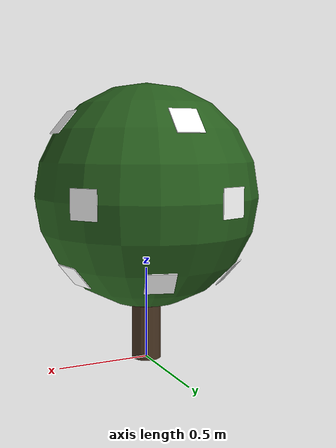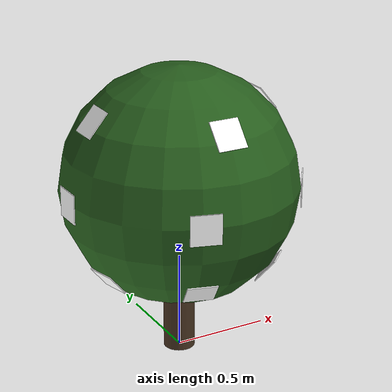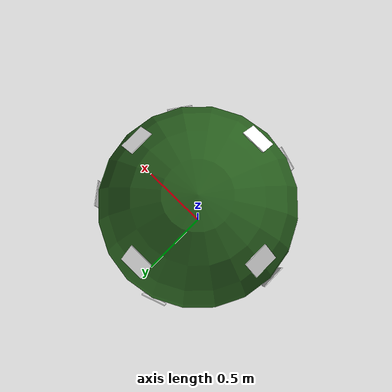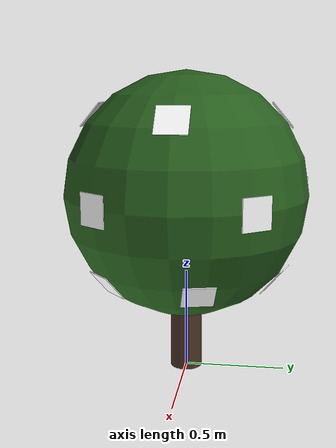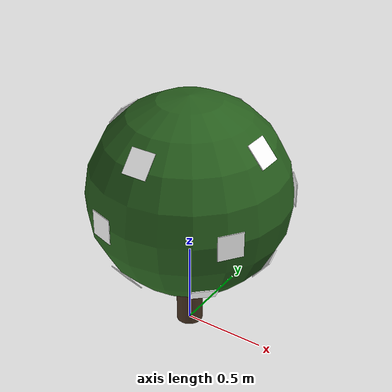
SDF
<?xml version="1.0"?>
<sdf version="1.8">
  <model name="citrus_tree">
    <static>true</static>
    <link name="link">

      <!-- Trunk -->
      <visual name="trunk_visual">
        <pose>0 0 0.15 0 0 0</pose>
        <geometry>
          <cylinder>
            <radius>0.08</radius>
            <length>0.3</length>
          </cylinder>
        </geometry>
        <material>
          <ambient>0.18 0.13 0.08 1</ambient>
          <diffuse>0.28 0.20 0.13 1</diffuse>
          <specular>0.02 0.02 0.02 1</specular>
        </material>
      </visual>

      <collision name="trunk_col">
        <pose>0 0 0.15 0 0 0</pose>
        <geometry>
          <cylinder>
            <radius>0.08</radius>
            <length>0.3</length>
          </cylinder>
        </geometry>
      </collision>

      <!-- Canopy -->
      <visual name="canopy_visual">
        <pose>0 0 0.9 0 0 0</pose>
        <geometry>
          <sphere>
            <radius>0.6</radius>
          </sphere>
        </geometry>
        <material>
          <ambient>0.09 0.28 0.09 1</ambient>
          <diffuse>0.16 0.38 0.12 1</diffuse>
          <specular>0.05 0.05 0.05 1</specular>
        </material>
      </visual>

      <collision name="canopy_col">
        <pose>0 0 0.9 0 0 0</pose>
        <geometry>
          <sphere>
            <radius>0.6</radius>
          </sphere>
        </geometry>
      </collision>

      <!-- Upper ring: 4 markers at 40 deg elevation, azimuth offset 0 deg -->
      <visual name="aruco_marker_01">
        <pose>0.4615 0.0 1.2873 0 0.8727 0.0</pose>
        <geometry>
          <box>
            <size>0.15 0.15 0.005</size>
          </box>
        </geometry>
        <material>
          <ambient>1 1 1 1</ambient>
          <diffuse>1 1 1 1</diffuse>
          <pbr>
            <metal>
              <albedo_map>model://citrus_tree/materials/textures/aruco_marker_0.png</albedo_map>
            </metal>
          </pbr>
        </material>
      </visual>

      <visual name="aruco_marker_02">
        <pose>0.0 0.4615 1.2873 0 0.8727 1.5708</pose>
        <geometry>
          <box>
            <size>0.15 0.15 0.005</size>
          </box>
        </geometry>
        <material>
          <ambient>1 1 1 1</ambient>
          <diffuse>1 1 1 1</diffuse>
          <pbr>
            <metal>
              <albedo_map>model://citrus_tree/materials/textures/aruco_marker_0.png</albedo_map>
            </metal>
          </pbr>
        </material>
      </visual>

      <visual name="aruco_marker_03">
        <pose>-0.4615 0.0 1.2873 0 0.8727 3.1416</pose>
        <geometry>
          <box>
            <size>0.15 0.15 0.005</size>
          </box>
        </geometry>
        <material>
          <ambient>1 1 1 1</ambient>
          <diffuse>1 1 1 1</diffuse>
          <pbr>
            <metal>
              <albedo_map>model://citrus_tree/materials/textures/aruco_marker_0.png</albedo_map>
            </metal>
          </pbr>
        </material>
      </visual>

      <visual name="aruco_marker_04">
        <pose>-0.0 -0.4615 1.2873 0 0.8727 4.7124</pose>
        <geometry>
          <box>
            <size>0.15 0.15 0.005</size>
          </box>
        </geometry>
        <material>
          <ambient>1 1 1 1</ambient>
          <diffuse>1 1 1 1</diffuse>
          <pbr>
            <metal>
              <albedo_map>model://citrus_tree/materials/textures/aruco_marker_0.png</albedo_map>
            </metal>
          </pbr>
        </material>
      </visual>

      <!-- Equator ring: 5 markers at 0 deg elevation, azimuth offset 37 deg -->
      <visual name="aruco_marker_05">
        <pose>0.4812 0.3626 0.9 0 1.5708 0.6458</pose>
        <geometry>
          <box>
            <size>0.15 0.15 0.005</size>
          </box>
        </geometry>
        <material>
          <ambient>1 1 1 1</ambient>
          <diffuse>1 1 1 1</diffuse>
          <pbr>
            <metal>
              <albedo_map>model://citrus_tree/materials/textures/aruco_marker_0.png</albedo_map>
            </metal>
          </pbr>
        </material>
      </visual>

      <visual name="aruco_marker_06">
        <pose>-0.1962 0.5697 0.9 0 1.5708 1.9024</pose>
        <geometry>
          <box>
            <size>0.15 0.15 0.005</size>
          </box>
        </geometry>
        <material>
          <ambient>1 1 1 1</ambient>
          <diffuse>1 1 1 1</diffuse>
          <pbr>
            <metal>
              <albedo_map>model://citrus_tree/materials/textures/aruco_marker_0.png</albedo_map>
            </metal>
          </pbr>
        </material>
      </visual>

      <visual name="aruco_marker_07">
        <pose>-0.6024 -0.0105 0.9 0 1.5708 3.159</pose>
        <geometry>
          <box>
            <size>0.15 0.15 0.005</size>
          </box>
        </geometry>
        <material>
          <ambient>1 1 1 1</ambient>
          <diffuse>1 1 1 1</diffuse>
          <pbr>
            <metal>
              <albedo_map>model://citrus_tree/materials/textures/aruco_marker_0.png</albedo_map>
            </metal>
          </pbr>
        </material>
      </visual>

      <visual name="aruco_marker_08">
        <pose>-0.1762 -0.5762 0.9 0 1.5708 4.4157</pose>
        <geometry>
          <box>
            <size>0.15 0.15 0.005</size>
          </box>
        </geometry>
        <material>
          <ambient>1 1 1 1</ambient>
          <diffuse>1 1 1 1</diffuse>
          <pbr>
            <metal>
              <albedo_map>model://citrus_tree/materials/textures/aruco_marker_0.png</albedo_map>
            </metal>
          </pbr>
        </material>
      </visual>

      <visual name="aruco_marker_09">
        <pose>0.4935 -0.3456 0.9 0 1.5708 5.6723</pose>
        <geometry>
          <box>
            <size>0.15 0.15 0.005</size>
          </box>
        </geometry>
        <material>
          <ambient>1 1 1 1</ambient>
          <diffuse>1 1 1 1</diffuse>
          <pbr>
            <metal>
              <albedo_map>model://citrus_tree/materials/textures/aruco_marker_0.png</albedo_map>
            </metal>
          </pbr>
        </material>
      </visual>

      <!-- Lower ring: 6 markers at -40 deg elevation, azimuth offset 74 deg -->
      <visual name="aruco_marker_10">
        <pose>0.1272 0.4437 0.5127 0 2.2689 1.2915</pose>
        <geometry>
          <box>
            <size>0.15 0.15 0.005</size>
          </box>
        </geometry>
        <material>
          <ambient>1 1 1 1</ambient>
          <diffuse>1 1 1 1</diffuse>
          <pbr>
            <metal>
              <albedo_map>model://citrus_tree/materials/textures/aruco_marker_0.png</albedo_map>
            </metal>
          </pbr>
        </material>
      </visual>

      <visual name="aruco_marker_11">
        <pose>-0.3206 0.332 0.5127 0 2.2689 2.3387</pose>
        <geometry>
          <box>
            <size>0.15 0.15 0.005</size>
          </box>
        </geometry>
        <material>
          <ambient>1 1 1 1</ambient>
          <diffuse>1 1 1 1</diffuse>
          <pbr>
            <metal>
              <albedo_map>model://citrus_tree/materials/textures/aruco_marker_0.png</albedo_map>
            </metal>
          </pbr>
        </material>
      </visual>

      <visual name="aruco_marker_12">
        <pose>-0.4478 -0.1117 0.5127 0 2.2689 3.3859</pose>
        <geometry>
          <box>
            <size>0.15 0.15 0.005</size>
          </box>
        </geometry>
        <material>
          <ambient>1 1 1 1</ambient>
          <diffuse>1 1 1 1</diffuse>
          <pbr>
            <metal>
              <albedo_map>model://citrus_tree/materials/textures/aruco_marker_0.png</albedo_map>
            </metal>
          </pbr>
        </material>
      </visual>

      <visual name="aruco_marker_13">
        <pose>-0.1272 -0.4437 0.5127 0 2.2689 4.4331</pose>
        <geometry>
          <box>
            <size>0.15 0.15 0.005</size>
          </box>
        </geometry>
        <material>
          <ambient>1 1 1 1</ambient>
          <diffuse>1 1 1 1</diffuse>
          <pbr>
            <metal>
              <albedo_map>model://citrus_tree/materials/textures/aruco_marker_0.png</albedo_map>
            </metal>
          </pbr>
        </material>
      </visual>

      <visual name="aruco_marker_14">
        <pose>0.3206 -0.332 0.5127 0 2.2689 5.4803</pose>
        <geometry>
          <box>
            <size>0.15 0.15 0.005</size>
          </box>
        </geometry>
        <material>
          <ambient>1 1 1 1</ambient>
          <diffuse>1 1 1 1</diffuse>
          <pbr>
            <metal>
              <albedo_map>model://citrus_tree/materials/textures/aruco_marker_0.png</albedo_map>
            </metal>
          </pbr>
        </material>
      </visual>

      <visual name="aruco_marker_15">
        <pose>0.4478 0.1117 0.5127 0 2.2689 6.5275</pose>
        <geometry>
          <box>
            <size>0.15 0.15 0.005</size>
          </box>
        </geometry>
        <material>
          <ambient>1 1 1 1</ambient>
          <diffuse>1 1 1 1</diffuse>
          <pbr>
            <metal>
              <albedo_map>model://citrus_tree/materials/textures/aruco_marker_0.png</albedo_map>
            </metal>
          </pbr>
        </material>
      </visual>

    </link>
  </model>
</sdf>
